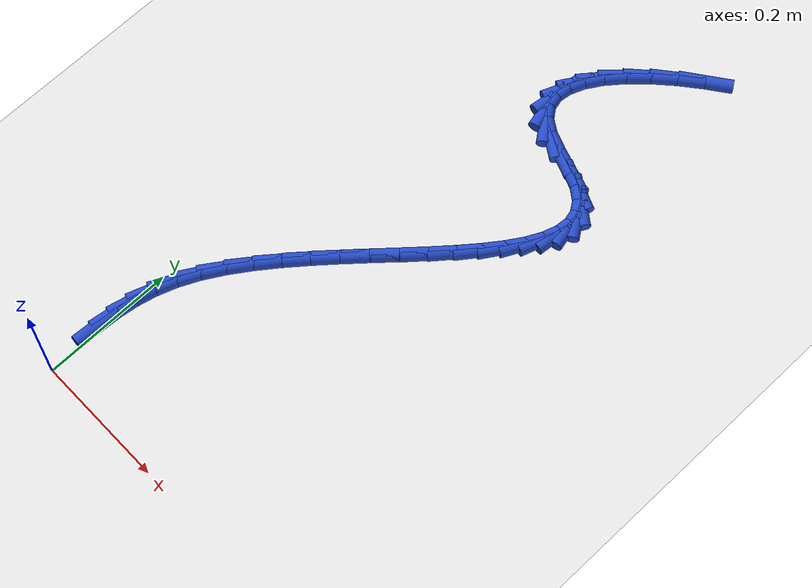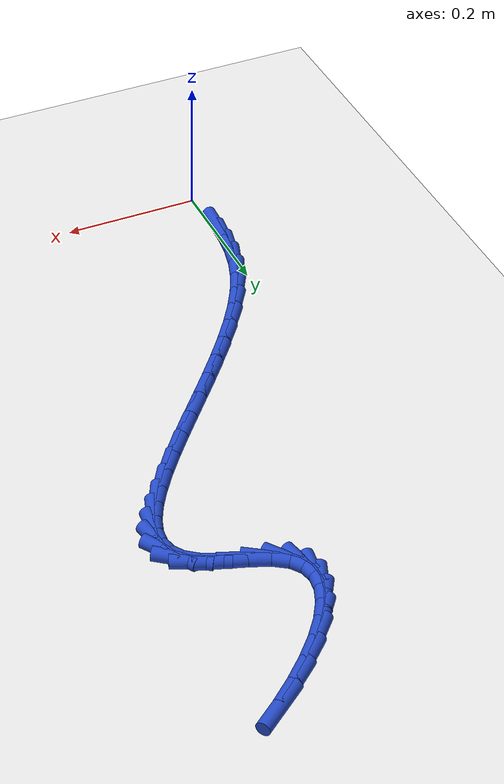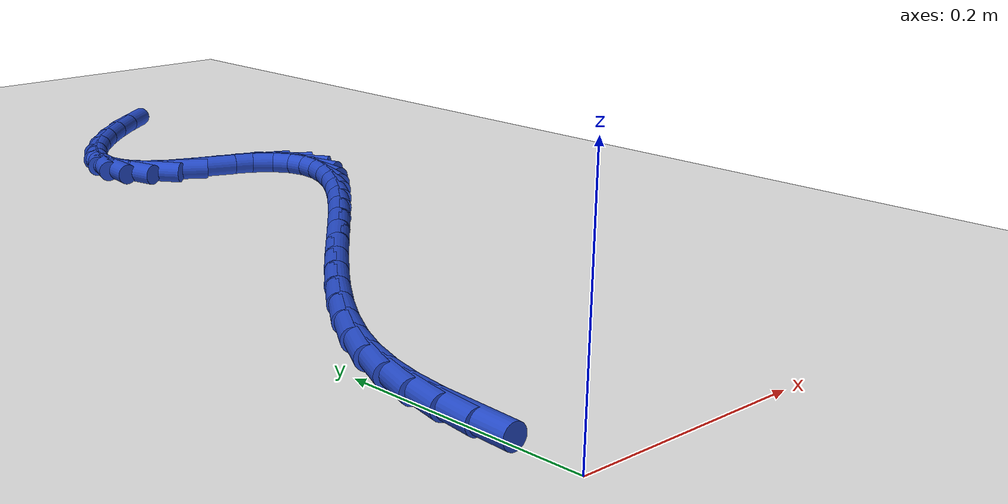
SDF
<sdf version="1.6">
 <world name="default">
  <model name="ground_plane">
   <static>1</static>
   <link name="link">
    <collision name="collision">
     <geometry><plane><normal>0 0 1</normal><size>100 100</size></plane></geometry>
     <surface><friction><ode><mu>100</mu><mu2>50</mu2></ode></friction></surface>
    </collision>
    <visual name="visual">
     <cast_shadows>0</cast_shadows>
     <geometry><plane><normal>0 0 1</normal><size>100 100</size></plane></geometry>
     <material>
      <script><uri>file://media/materials/scripts/gazebo.material</uri><name>Gazebo/WhiteGlow</name></script>
     </material>
    </visual>
   </link>
  </model>
  <model name="line">
   <link name="link_3">
    <pose>-0.003541878716738143 0.0884259159838732 0.01 0 1.57 1.5110650794174934</pose>
    <collision name="collision">
     <geometry><cylinder><radius>0.01</radius><length>0.08</length></cylinder></geometry>
    </collision>
    <visual name="visual">
     <material>
      <script><name>Gazebo/Blue</name><uri>file://media/materials/scripts/gazebo.material</uri></script>
     </material>
     <geometry><cylinder><radius>0.01</radius><length>0.08</length></cylinder></geometry>
    </visual>
   </link>
   <link name="link_4">
    <pose>-0.0017868483128985852 0.11777307969140406 0.01 0 1.57 1.4309603608351413</pose>
    <collision name="collision">
     <geometry><cylinder><radius>0.01</radius><length>0.08</length></cylinder></geometry>
    </collision>
    <visual name="visual">
     <material>
      <script><name>Gazebo/Blue</name><uri>file://media/materials/scripts/gazebo.material</uri></script>
     </material>
     <geometry><cylinder><radius>0.01</radius><length>0.08</length></cylinder></geometry>
    </visual>
   </link>
   <link name="link_5">
    <pose>0.002366411609381844 0.14728017720447614 0.01 0 1.57 1.3366038377642835</pose>
    <collision name="collision">
     <geometry><cylinder><radius>0.01</radius><length>0.08</length></cylinder></geometry>
    </collision>
    <visual name="visual">
     <material>
      <script><name>Gazebo/Blue</name><uri>file://media/materials/scripts/gazebo.material</uri></script>
     </material>
     <geometry><cylinder><radius>0.01</radius><length>0.08</length></cylinder></geometry>
    </visual>
   </link>
   <link name="link_6">
    <pose>0.009476141768341979 0.17708161129254213 0.01 0 1.57 1.2328289585889005</pose>
    <collision name="collision">
     <geometry><cylinder><radius>0.01</radius><length>0.08</length></cylinder></geometry>
    </collision>
    <visual name="visual">
     <material>
      <script><name>Gazebo/Blue</name><uri>file://media/materials/scripts/gazebo.material</uri></script>
     </material>
     <geometry><cylinder><radius>0.01</radius><length>0.08</length></cylinder></geometry>
    </visual>
   </link>
   <link name="link_7">
    <pose>0.020100582882220674 0.20731178472505488 0.01 0 1.57 1.1274622885355785</pose>
    <collision name="collision">
     <geometry><cylinder><radius>0.01</radius><length>0.08</length></cylinder></geometry>
    </collision>
    <visual name="visual">
     <material>
      <script><name>Gazebo/Blue</name><uri>file://media/materials/scripts/gazebo.material</uri></script>
     </material>
     <geometry><cylinder><radius>0.01</radius><length>0.08</length></cylinder></geometry>
    </visual>
   </link>
   <link name="link_8">
    <pose>0.034712990333967325 0.2380838225575713 0.01 0 1.57 1.040139949571756</pose>
    <collision name="collision">
     <geometry><cylinder><radius>0.01</radius><length>0.08</length></cylinder></geometry>
    </collision>
    <visual name="visual">
     <material>
      <script><name>Gazebo/Blue</name><uri>file://media/materials/scripts/gazebo.material</uri></script>
     </material>
     <geometry><cylinder><radius>0.01</radius><length>0.08</length></cylinder></geometry>
    </visual>
   </link>
   <link name="link_9">
    <pose>0.053045450593195036 0.26932528394733474 0.01 0 1.57 0.974633105736349</pose>
    <collision name="collision">
     <geometry><cylinder><radius>0.01</radius><length>0.08</length></cylinder></geometry>
    </collision>
    <visual name="visual">
     <material>
      <script><name>Gazebo/Blue</name><uri>file://media/materials/scripts/gazebo.material</uri></script>
     </material>
     <geometry><cylinder><radius>0.01</radius><length>0.08</length></cylinder></geometry>
    </visual>
   </link>
   <link name="link_10">
    <pose>0.07444779799339217 0.30086802387438144 0.01 0 1.57 0.9260319252170768</pose>
    <collision name="collision">
     <geometry><cylinder><radius>0.01</radius><length>0.08</length></cylinder></geometry>
    </collision>
    <visual name="visual">
     <material>
      <script><name>Gazebo/Blue</name><uri>file://media/materials/scripts/gazebo.material</uri></script>
     </material>
     <geometry><cylinder><radius>0.01</radius><length>0.08</length></cylinder></geometry>
    </visual>
   </link>
   <link name="link_11">
    <pose>0.09826668894050022 0.33254310166343964 0.01 0 1.57 0.8908483429197153</pose>
    <collision name="collision">
     <geometry><cylinder><radius>0.01</radius><length>0.08</length></cylinder></geometry>
    </collision>
    <visual name="visual">
     <material>
      <script><name>Gazebo/Blue</name><uri>file://media/materials/scripts/gazebo.material</uri></script>
     </material>
     <geometry><cylinder><radius>0.01</radius><length>0.08</length></cylinder></geometry>
    </visual>
   </link>
   <link name="link_12">
    <pose>0.12384877984046072 0.3641815766392376 0.01 0 1.57 0.8667834890952345</pose>
    <collision name="collision">
     <geometry><cylinder><radius>0.01</radius><length>0.08</length></cylinder></geometry>
    </collision>
    <visual name="visual">
     <material>
      <script><name>Gazebo/Blue</name><uri>file://media/materials/scripts/gazebo.material</uri></script>
     </material>
     <geometry><cylinder><radius>0.01</radius><length>0.08</length></cylinder></geometry>
    </visual>
   </link>
   <link name="link_13">
    <pose>0.1505407270992152 0.3956145081265039 0.01 0 1.57 0.8524713388586628</pose>
    <collision name="collision">
     <geometry><cylinder><radius>0.01</radius><length>0.08</length></cylinder></geometry>
    </collision>
    <visual name="visual">
     <material>
      <script><name>Gazebo/Blue</name><uri>file://media/materials/scripts/gazebo.material</uri></script>
     </material>
     <geometry><cylinder><radius>0.01</radius><length>0.08</length></cylinder></geometry>
    </visual>
   </link>
   <link name="link_14">
    <pose>0.17768918712270512 0.42667295544996653 0.01 0 1.57 0.8473268928034431</pose>
    <collision name="collision">
     <geometry><cylinder><radius>0.01</radius><length>0.08</length></cylinder></geometry>
    </collision>
    <visual name="visual">
     <material>
      <script><name>Gazebo/Blue</name><uri>file://media/materials/scripts/gazebo.material</uri></script>
     </material>
     <geometry><cylinder><radius>0.01</radius><length>0.08</length></cylinder></geometry>
    </visual>
   </link>
   <link name="link_15">
    <pose>0.204640816316872 0.4571879779343539 0.01 0 1.57 0.8515079444819507</pose>
    <collision name="collision">
     <geometry><cylinder><radius>0.01</radius><length>0.08</length></cylinder></geometry>
    </collision>
    <visual name="visual">
     <material>
      <script><name>Gazebo/Blue</name><uri>file://media/materials/scripts/gazebo.material</uri></script>
     </material>
     <geometry><cylinder><radius>0.01</radius><length>0.08</length></cylinder></geometry>
    </visual>
   </link>
   <link name="link_16">
    <pose>0.23074227108765738 0.48699063490439426 0.01 0 1.57 0.8660054793066367</pose>
    <collision name="collision">
     <geometry><cylinder><radius>0.01</radius><length>0.08</length></cylinder></geometry>
    </collision>
    <visual name="visual">
     <material>
      <script><name>Gazebo/Blue</name><uri>file://media/materials/scripts/gazebo.material</uri></script>
     </material>
     <geometry><cylinder><radius>0.01</radius><length>0.08</length></cylinder></geometry>
    </visual>
   </link>
   <link name="link_17">
    <pose>0.25534020784100275 0.5159119856848159 0.01 0 1.57 0.8929087442363446</pose>
    <collision name="collision">
     <geometry><cylinder><radius>0.01</radius><length>0.08</length></cylinder></geometry>
    </collision>
    <visual name="visual">
     <material>
      <script><name>Gazebo/Blue</name><uri>file://media/materials/scripts/gazebo.material</uri></script>
     </material>
     <geometry><cylinder><radius>0.01</radius><length>0.08</length></cylinder></geometry>
    </visual>
   </link>
   <link name="link_18">
    <pose>0.2777812829828497 0.5437830896003473 0.01 0 1.57 0.9359491832190968</pose>
    <collision name="collision">
     <geometry><cylinder><radius>0.01</radius><length>0.08</length></cylinder></geometry>
    </collision>
    <visual name="visual">
     <material>
      <script><name>Gazebo/Blue</name><uri>file://media/materials/scripts/gazebo.material</uri></script>
     </material>
     <geometry><cylinder><radius>0.01</radius><length>0.08</length></cylinder></geometry>
    </visual>
   </link>
   <link name="link_19">
    <pose>0.2974121529191396 0.5704350059757165 0.01 0 1.57 1.0015253499262218</pose>
    <collision name="collision">
     <geometry><cylinder><radius>0.01</radius><length>0.08</length></cylinder></geometry>
    </collision>
    <visual name="visual">
     <material>
      <script><name>Gazebo/Blue</name><uri>file://media/materials/scripts/gazebo.material</uri></script>
     </material>
     <geometry><cylinder><radius>0.01</radius><length>0.08</length></cylinder></geometry>
    </visual>
   </link>
   <link name="link_20">
    <pose>0.3135794740558142 0.5956987941356519 0.01 0 1.57 1.1005206180244087</pose>
    <collision name="collision">
     <geometry><cylinder><radius>0.01</radius><length>0.08</length></cylinder></geometry>
    </collision>
    <visual name="visual">
     <material>
      <script><name>Gazebo/Blue</name><uri>file://media/materials/scripts/gazebo.material</uri></script>
     </material>
     <geometry><cylinder><radius>0.01</radius><length>0.08</length></cylinder></geometry>
    </visual>
   </link>
   <link name="link_21">
    <pose>0.3256299027988147 0.6194055134048818 0.01 0 1.57 1.250959550366497</pose>
    <collision name="collision">
     <geometry><cylinder><radius>0.01</radius><length>0.08</length></cylinder></geometry>
    </collision>
    <visual name="visual">
     <material>
      <script><name>Gazebo/Blue</name><uri>file://media/materials/scripts/gazebo.material</uri></script>
     </material>
     <geometry><cylinder><radius>0.01</radius><length>0.08</length></cylinder></geometry>
    </visual>
   </link>
   <link name="link_22">
    <pose>0.33291009555408285 0.6413862231081344 0.01 0 1.57 1.4786239385223316</pose>
    <collision name="collision">
     <geometry><cylinder><radius>0.01</radius><length>0.08</length></cylinder></geometry>
    </collision>
    <visual name="visual">
     <material>
      <script><name>Gazebo/Blue</name><uri>file://media/materials/scripts/gazebo.material</uri></script>
     </material>
     <geometry><cylinder><radius>0.01</radius><length>0.08</length></cylinder></geometry>
    </visual>
   </link>
   <link name="link_23">
    <pose>0.33476670872756 0.6614719825701381 0.01 0 1.57 -1.3407642855303261</pose>
    <collision name="collision">
     <geometry><cylinder><radius>0.01</radius><length>0.08</length></cylinder></geometry>
    </collision>
    <visual name="visual">
     <material>
      <script><name>Gazebo/Blue</name><uri>file://media/materials/scripts/gazebo.material</uri></script>
     </material>
     <geometry><cylinder><radius>0.01</radius><length>0.08</length></cylinder></geometry>
    </visual>
   </link>
   <link name="link_24">
    <pose>0.3305463987251878 0.6794938511156213 0.01 0 1.57 -0.9644084942905469</pose>
    <collision name="collision">
     <geometry><cylinder><radius>0.01</radius><length>0.08</length></cylinder></geometry>
    </collision>
    <visual name="visual">
     <material>
      <script><name>Gazebo/Blue</name><uri>file://media/materials/scripts/gazebo.material</uri></script>
     </material>
     <geometry><cylinder><radius>0.01</radius><length>0.08</length></cylinder></geometry>
    </visual>
   </link>
   <link name="link_25">
    <pose>0.3195958219529077 0.6952828880693122 0.01 0 1.57 -0.630695453520344</pose>
    <collision name="collision">
     <geometry><cylinder><radius>0.01</radius><length>0.08</length></cylinder></geometry>
    </collision>
    <visual name="visual">
     <material>
      <script><name>Gazebo/Blue</name><uri>file://media/materials/scripts/gazebo.material</uri></script>
     </material>
     <geometry><cylinder><radius>0.01</radius><length>0.08</length></cylinder></geometry>
    </visual>
   </link>
   <link name="link_26">
    <pose>0.3012616348166613 0.7086701527559389 0.01 0 1.57 -0.40079031758931793</pose>
    <collision name="collision">
     <geometry><cylinder><radius>0.01</radius><length>0.08</length></cylinder></geometry>
    </collision>
    <visual name="visual">
     <material>
      <script><name>Gazebo/Blue</name><uri>file://media/materials/scripts/gazebo.material</uri></script>
     </material>
     <geometry><cylinder><radius>0.01</radius><length>0.08</length></cylinder></geometry>
    </visual>
   </link>
   <link name="link_27">
    <pose>0.27535995974188815 0.7196453431461279 0.01 0 1.57 -0.32118776552928446</pose>
    <collision name="collision">
     <geometry><cylinder><radius>0.01</radius><length>0.08</length></cylinder></geometry>
    </collision>
    <visual name="visual">
     <material>
      <script><name>Gazebo/Blue</name><uri>file://media/materials/scripts/gazebo.material</uri></script>
     </material>
     <geometry><cylinder><radius>0.01</radius><length>0.08</length></cylinder></geometry>
    </visual>
   </link>
   <link name="link_28">
    <pose>0.24564927381471666 0.7295303298897782 0.01 0 1.57 -0.370110753486321</pose>
    <collision name="collision">
     <geometry><cylinder><radius>0.01</radius><length>0.08</length></cylinder></geometry>
    </collision>
    <visual name="visual">
     <material>
      <script><name>Gazebo/Blue</name><uri>file://media/materials/scripts/gazebo.material</uri></script>
     </material>
     <geometry><cylinder><radius>0.01</radius><length>0.08</length></cylinder></geometry>
    </visual>
   </link>
   <link name="link_29">
    <pose>0.21785859035713234 0.7403128533422965 0.01 0 1.57 -0.5789276305539273</pose>
    <collision name="collision">
     <geometry><cylinder><radius>0.01</radius><length>0.08</length></cylinder></geometry>
    </collision>
    <visual name="visual">
     <material>
      <script><name>Gazebo/Blue</name><uri>file://media/materials/scripts/gazebo.material</uri></script>
     </material>
     <geometry><cylinder><radius>0.01</radius><length>0.08</length></cylinder></geometry>
    </visual>
   </link>
   <link name="link_30">
    <pose>0.19722996862845044 0.7537964805623706 0.01 0 1.57 -0.933395760136652</pose>
    <collision name="collision">
     <geometry><cylinder><radius>0.01</radius><length>0.08</length></cylinder></geometry>
    </collision>
    <visual name="visual">
     <material>
      <script><name>Gazebo/Blue</name><uri>file://media/materials/scripts/gazebo.material</uri></script>
     </material>
     <geometry><cylinder><radius>0.01</radius><length>0.08</length></cylinder></geometry>
    </visual>
   </link>
   <link name="link_31">
    <pose>0.18502171263524067 0.7702827349066502 0.01 0 1.57 -1.3426103056390835</pose>
    <collision name="collision">
     <geometry><cylinder><radius>0.01</radius><length>0.08</length></cylinder></geometry>
    </collision>
    <visual name="visual">
     <material>
      <script><name>Gazebo/Blue</name><uri>file://media/materials/scripts/gazebo.material</uri></script>
     </material>
     <geometry><cylinder><radius>0.01</radius><length>0.08</length></cylinder></geometry>
    </visual>
   </link>
   <link name="link_32">
    <pose>0.1805921367438082 0.789356763525912 0.01 0 1.57 1.4445694586497135</pose>
    <collision name="collision">
     <geometry><cylinder><radius>0.01</radius><length>0.08</length></cylinder></geometry>
    </collision>
    <visual name="visual">
     <material>
      <script><name>Gazebo/Blue</name><uri>file://media/materials/scripts/gazebo.material</uri></script>
     </material>
     <geometry><cylinder><radius>0.01</radius><length>0.08</length></cylinder></geometry>
    </visual>
   </link>
   <link name="link_33">
    <pose>0.1832878478669804 0.8105992993673352 0.01 0 1.57 1.19138172134711</pose>
    <collision name="collision">
     <geometry><cylinder><radius>0.01</radius><length>0.08</length></cylinder></geometry>
    </collision>
    <visual name="visual">
     <material>
      <script><name>Gazebo/Blue</name><uri>file://media/materials/scripts/gazebo.material</uri></script>
     </material>
     <geometry><cylinder><radius>0.01</radius><length>0.08</length></cylinder></geometry>
    </visual>
   </link>
   <link name="link_34">
    <pose>0.19245545291758462 0.8335910753780997 0.01 0 1.57 1.0185786303793594</pose>
    <collision name="collision">
     <geometry><cylinder><radius>0.01</radius><length>0.08</length></cylinder></geometry>
    </collision>
    <visual name="visual">
     <material>
      <script><name>Gazebo/Blue</name><uri>file://media/materials/scripts/gazebo.material</uri></script>
     </material>
     <geometry><cylinder><radius>0.01</radius><length>0.08</length></cylinder></geometry>
    </visual>
   </link>
   <link name="link_35">
    <pose>0.20744155880844828 0.8579128245053855 0.01 0 1.57 0.8968957139933799</pose>
    <collision name="collision">
     <geometry><cylinder><radius>0.01</radius><length>0.08</length></cylinder></geometry>
    </collision>
    <visual name="visual">
     <material>
      <script><name>Gazebo/Blue</name><uri>file://media/materials/scripts/gazebo.material</uri></script>
     </material>
     <geometry><cylinder><radius>0.01</radius><length>0.08</length></cylinder></geometry>
    </visual>
   </link>
   <link name="link_36">
    <pose>0.22759277245239876 0.883145279696372 0.01 0 1.57 0.8064514682048279</pose>
    <collision name="collision">
     <geometry><cylinder><radius>0.01</radius><length>0.08</length></cylinder></geometry>
    </collision>
    <visual name="visual">
     <material>
      <script><name>Gazebo/Blue</name><uri>file://media/materials/scripts/gazebo.material</uri></script>
     </material>
     <geometry><cylinder><radius>0.01</radius><length>0.08</length></cylinder></geometry>
    </visual>
   </link>
   <link name="link_37">
    <pose>0.2522557007622635 0.908869173898239 0.01 0 1.57 0.7352686507906886</pose>
    <collision name="collision">
     <geometry><cylinder><radius>0.01</radius><length>0.08</length></cylinder></geometry>
    </collision>
    <visual name="visual">
     <material>
      <script><name>Gazebo/Blue</name><uri>file://media/materials/scripts/gazebo.material</uri></script>
     </material>
     <geometry><cylinder><radius>0.01</radius><length>0.08</length></cylinder></geometry>
    </visual>
   </link>
   <link name="link_38">
    <pose>0.2807769506508697 0.9346652400581662 0.01 0 1.57 0.6760470353094248</pose>
    <collision name="collision">
     <geometry><cylinder><radius>0.01</radius><length>0.08</length></cylinder></geometry>
    </collision>
    <visual name="visual">
     <material>
      <script><name>Gazebo/Blue</name><uri>file://media/materials/scripts/gazebo.material</uri></script>
     </material>
     <geometry><cylinder><radius>0.01</radius><length>0.08</length></cylinder></geometry>
    </visual>
   </link>
   <link name="link_39">
    <pose>0.31250312903104516 0.9601142111233334 0.01 0 1.57 0.6240740622735509</pose>
    <collision name="collision">
     <geometry><cylinder><radius>0.01</radius><length>0.08</length></cylinder></geometry>
    </collision>
    <visual name="visual">
     <material>
      <script><name>Gazebo/Blue</name><uri>file://media/materials/scripts/gazebo.material</uri></script>
     </material>
     <geometry><cylinder><radius>0.01</radius><length>0.08</length></cylinder></geometry>
    </visual>
   </link>
  </model>
 </world>
</sdf>
